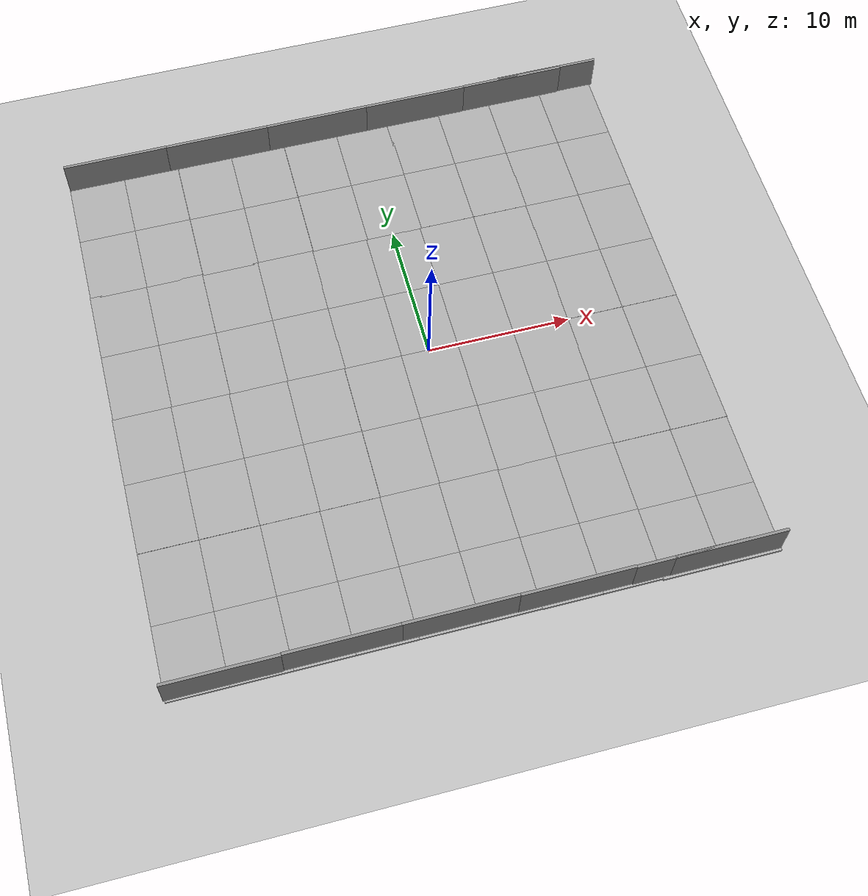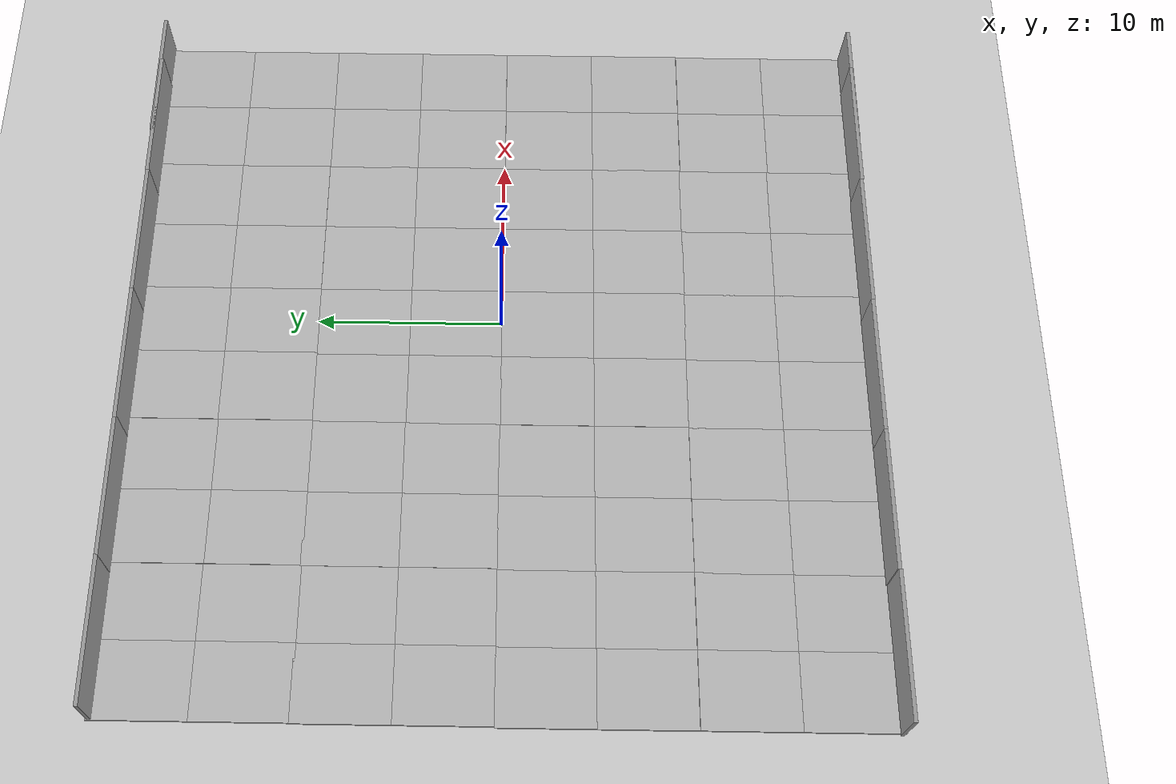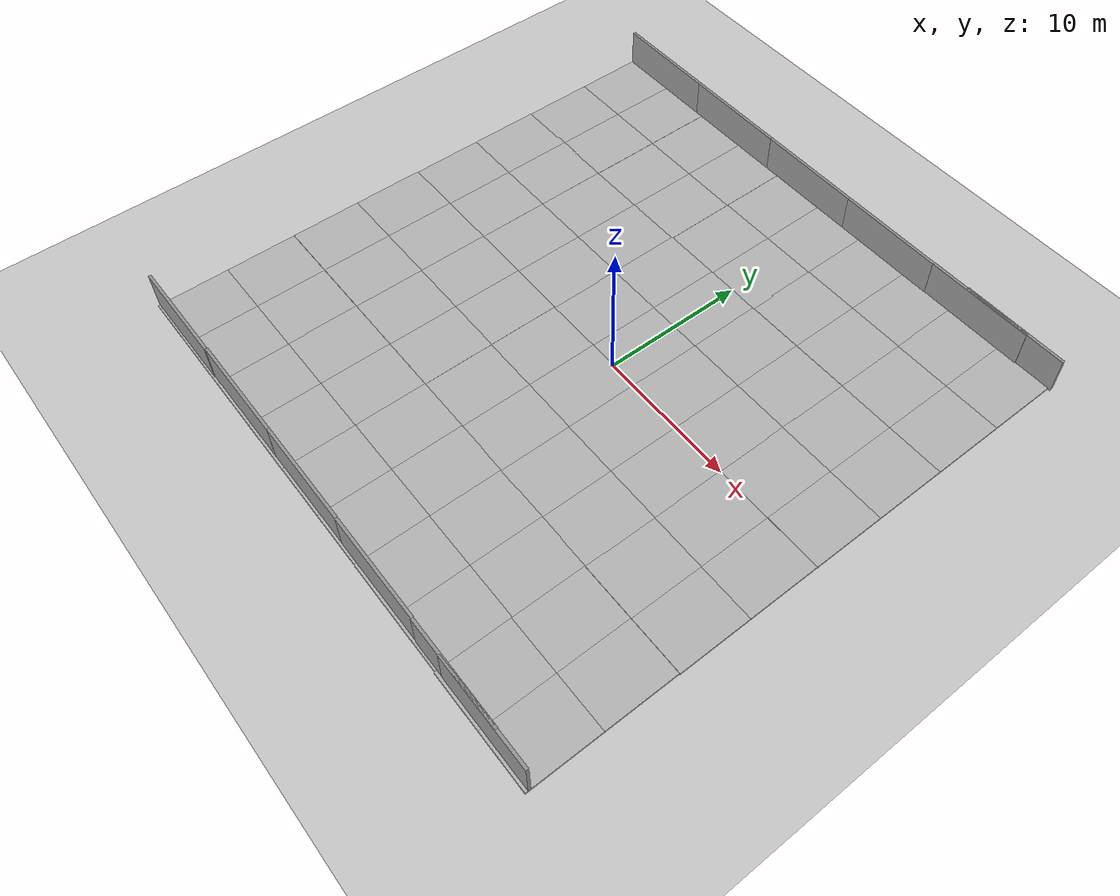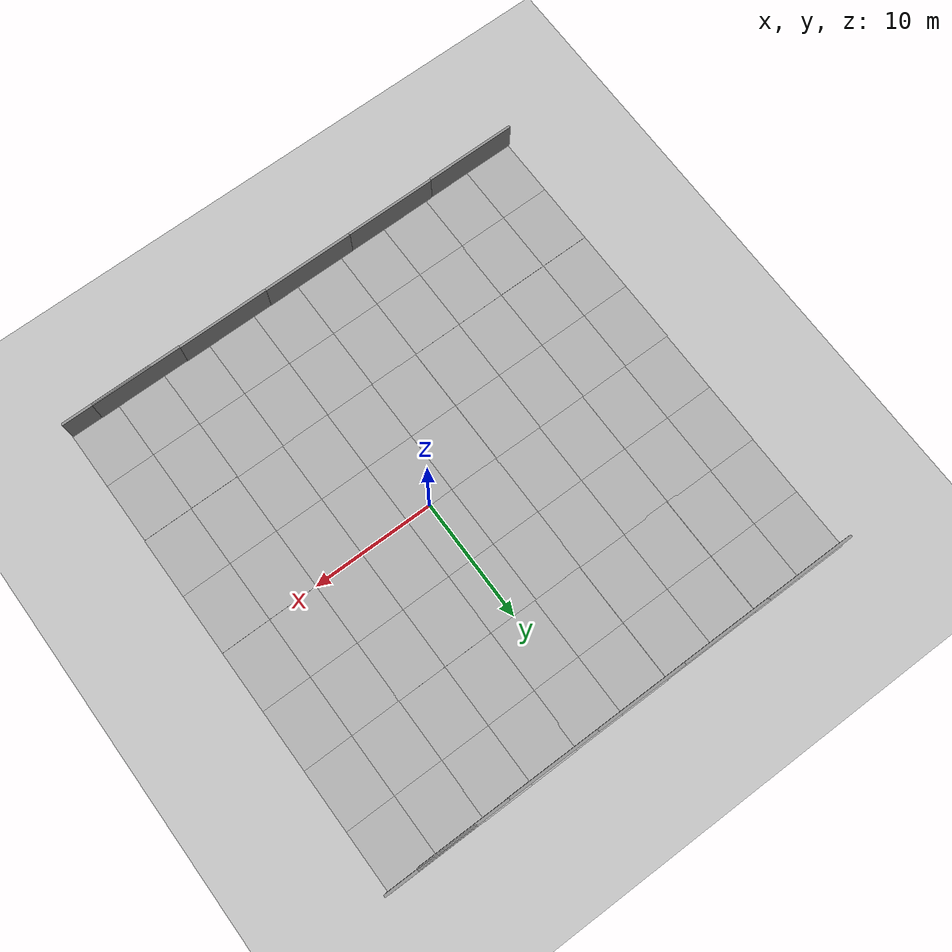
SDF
<sdf version="1.6">
 <world name="default">
  <light name="sun" type="directional">
   <pose>0 0 10 0 -0 0</pose>
   <diffuse>0.8 0.8 0.8 1</diffuse>
   <specular>0.2 0.2 0.2 1</specular>
   <attenuation>
    <range>1000</range>
    <constant>0.9</constant>
    <linear>0.01</linear>
    <quadratic>0.001</quadratic>
   </attenuation>
   <direction>-0.5 0.1 -0.9</direction>
  </light>
  <gravity>0 0 -9.8</gravity>
  <magnetic_field>6e-06 2.3e-05 -4.2e-05</magnetic_field>
  <atmosphere type="adiabatic"/>
  <physics name="default_physics" default="0" type="ode">
   <max_step_size>0.001</max_step_size>
   <real_time_factor>1</real_time_factor>
   <real_time_update_rate>1000</real_time_update_rate>
  </physics>
  <scene><ambient>0.4 0.4 0.4 1</ambient><background>0.7 0.7 0.7 1</background><shadows>1</shadows></scene>
  <spherical_coordinates>
   <surface_model>EARTH_WGS84</surface_model>
   <latitude_deg>0</latitude_deg>
   <longitude_deg>0</longitude_deg>
   <elevation>0</elevation>
   <heading_deg>0</heading_deg>
  </spherical_coordinates>
  <model name="ground_plane">
   <static>1</static>
   <link name="link">
    <collision name="collision">
     <geometry><plane><normal>0 0 1</normal><size>100 100</size></plane></geometry>
     <surface><friction><ode><mu>100</mu><mu2>50</mu2></ode></friction></surface>
    </collision>
    <visual name="visual">
     <cast_shadows>0</cast_shadows>
     <geometry><plane><normal>0 0 1</normal><size>100 100</size></plane></geometry>
     <material>
      <script><uri>file://media/materials/scripts/gazebo.material</uri><name>Gazebo/Grey</name></script>
     </material>
    </visual>
   </link>
   <pose>6.25069 6.10633 0 0 -0 0</pose>
  </model>
  <model name="mud_box">
   <static>1</static>
   <link name="link">
    <collision name="collision"><geometry><box><size>8 10 0.2</size></box></geometry></collision>
    <visual name="visual_1">
     <pose>-2 2.5 0 0 -0 0</pose>
     <cast_shadows>0</cast_shadows>
     <geometry><box><size>4 5 0.2</size></box></geometry>
     <material>
      <script>
       <uri>model://mud_box/materials/scripts</uri>
       <uri>model://mud_box/materials/textures</uri>
       <name>vrc/mud</name>
      </script>
     </material>
    </visual>
    <visual name="visual_2">
     <pose>2 2.5 0 0 -0 0</pose>
     <cast_shadows>0</cast_shadows>
     <geometry><box><size>4 5 0.2</size></box></geometry>
     <material>
      <script>
       <uri>model://mud_box/materials/scripts</uri>
       <uri>model://mud_box/materials/textures</uri>
       <name>vrc/mud</name>
      </script>
     </material>
    </visual>
    <visual name="visual_3">
     <pose>2 -2.5 0 0 -0 0</pose>
     <cast_shadows>0</cast_shadows>
     <geometry><box><size>4 5 0.2</size></box></geometry>
     <material>
      <script>
       <uri>model://mud_box/materials/scripts</uri>
       <uri>model://mud_box/materials/textures</uri>
       <name>vrc/mud</name>
      </script>
     </material>
    </visual>
    <visual name="visual_4">
     <pose>-2 -2.5 0 0 -0 0</pose>
     <cast_shadows>0</cast_shadows>
     <geometry><box><size>4 5 0.2</size></box></geometry>
     <material>
      <script>
       <uri>model://mud_box/materials/scripts</uri>
       <uri>model://mud_box/materials/textures</uri>
       <name>vrc/mud</name>
      </script>
     </material>
    </visual>
   </link>
   <pose>5.99496 -5.0064 0 0 -0 0</pose>
  </model>
  <model name="mud_box_0">
   <static>1</static>
   <link name="link">
    <collision name="collision"><geometry><box><size>8 10 0.2</size></box></geometry></collision>
    <visual name="visual_1">
     <pose>-2 2.5 0 0 -0 0</pose>
     <cast_shadows>0</cast_shadows>
     <geometry><box><size>4 5 0.2</size></box></geometry>
     <material>
      <script>
       <uri>model://mud_box/materials/scripts</uri>
       <uri>model://mud_box/materials/textures</uri>
       <name>vrc/mud</name>
      </script>
     </material>
    </visual>
    <visual name="visual_2">
     <pose>2 2.5 0 0 -0 0</pose>
     <cast_shadows>0</cast_shadows>
     <geometry><box><size>4 5 0.2</size></box></geometry>
     <material>
      <script>
       <uri>model://mud_box/materials/scripts</uri>
       <uri>model://mud_box/materials/textures</uri>
       <name>vrc/mud</name>
      </script>
     </material>
    </visual>
    <visual name="visual_3">
     <pose>2 -2.5 0 0 -0 0</pose>
     <cast_shadows>0</cast_shadows>
     <geometry><box><size>4 5 0.2</size></box></geometry>
     <material>
      <script>
       <uri>model://mud_box/materials/scripts</uri>
       <uri>model://mud_box/materials/textures</uri>
       <name>vrc/mud</name>
      </script>
     </material>
    </visual>
    <visual name="visual_4">
     <pose>-2 -2.5 0 0 -0 0</pose>
     <cast_shadows>0</cast_shadows>
     <geometry><box><size>4 5 0.2</size></box></geometry>
     <material>
      <script>
       <uri>model://mud_box/materials/scripts</uri>
       <uri>model://mud_box/materials/textures</uri>
       <name>vrc/mud</name>
      </script>
     </material>
    </visual>
   </link>
   <pose>-1.99179 -4.97894 0 0 -0 0</pose>
  </model>
  <model name="mud_box_1">
   <static>1</static>
   <link name="link">
    <collision name="collision"><geometry><box><size>8 10 0.2</size></box></geometry></collision>
    <visual name="visual_1">
     <pose>-2 2.5 0 0 -0 0</pose>
     <cast_shadows>0</cast_shadows>
     <geometry><box><size>4 5 0.2</size></box></geometry>
     <material>
      <script>
       <uri>model://mud_box/materials/scripts</uri>
       <uri>model://mud_box/materials/textures</uri>
       <name>vrc/mud</name>
      </script>
     </material>
    </visual>
    <visual name="visual_2">
     <pose>2 2.5 0 0 -0 0</pose>
     <cast_shadows>0</cast_shadows>
     <geometry><box><size>4 5 0.2</size></box></geometry>
     <material>
      <script>
       <uri>model://mud_box/materials/scripts</uri>
       <uri>model://mud_box/materials/textures</uri>
       <name>vrc/mud</name>
      </script>
     </material>
    </visual>
    <visual name="visual_3">
     <pose>2 -2.5 0 0 -0 0</pose>
     <cast_shadows>0</cast_shadows>
     <geometry><box><size>4 5 0.2</size></box></geometry>
     <material>
      <script>
       <uri>model://mud_box/materials/scripts</uri>
       <uri>model://mud_box/materials/textures</uri>
       <name>vrc/mud</name>
      </script>
     </material>
    </visual>
    <visual name="visual_4">
     <pose>-2 -2.5 0 0 -0 0</pose>
     <cast_shadows>0</cast_shadows>
     <geometry><box><size>4 5 0.2</size></box></geometry>
     <material>
      <script>
       <uri>model://mud_box/materials/scripts</uri>
       <uri>model://mud_box/materials/textures</uri>
       <name>vrc/mud</name>
      </script>
     </material>
    </visual>
   </link>
   <pose>-10.0007 -4.94628 0 0 -0 0</pose>
  </model>
  <model name="mud_box_2">
   <static>1</static>
   <link name="link">
    <collision name="collision"><geometry><box><size>8 10 0.2</size></box></geometry></collision>
    <visual name="visual_1">
     <pose>-2 2.5 0 0 -0 0</pose>
     <cast_shadows>0</cast_shadows>
     <geometry><box><size>4 5 0.2</size></box></geometry>
     <material>
      <script>
       <uri>model://mud_box/materials/scripts</uri>
       <uri>model://mud_box/materials/textures</uri>
       <name>vrc/mud</name>
      </script>
     </material>
    </visual>
    <visual name="visual_2">
     <pose>2 2.5 0 0 -0 0</pose>
     <cast_shadows>0</cast_shadows>
     <geometry><box><size>4 5 0.2</size></box></geometry>
     <material>
      <script>
       <uri>model://mud_box/materials/scripts</uri>
       <uri>model://mud_box/materials/textures</uri>
       <name>vrc/mud</name>
      </script>
     </material>
    </visual>
    <visual name="visual_3">
     <pose>2 -2.5 0 0 -0 0</pose>
     <cast_shadows>0</cast_shadows>
     <geometry><box><size>4 5 0.2</size></box></geometry>
     <material>
      <script>
       <uri>model://mud_box/materials/scripts</uri>
       <uri>model://mud_box/materials/textures</uri>
       <name>vrc/mud</name>
      </script>
     </material>
    </visual>
    <visual name="visual_4">
     <pose>-2 -2.5 0 0 -0 0</pose>
     <cast_shadows>0</cast_shadows>
     <geometry><box><size>4 5 0.2</size></box></geometry>
     <material>
      <script>
       <uri>model://mud_box/materials/scripts</uri>
       <uri>model://mud_box/materials/textures</uri>
       <name>vrc/mud</name>
      </script>
     </material>
    </visual>
   </link>
   <pose>6.00465 5.00082 0 0 -0 0</pose>
  </model>
  <model name="mud_box_3">
   <static>1</static>
   <link name="link">
    <collision name="collision"><geometry><box><size>8 10 0.2</size></box></geometry></collision>
    <visual name="visual_1">
     <pose>-2 2.5 0 0 -0 0</pose>
     <cast_shadows>0</cast_shadows>
     <geometry><box><size>4 5 0.2</size></box></geometry>
     <material>
      <script>
       <uri>model://mud_box/materials/scripts</uri>
       <uri>model://mud_box/materials/textures</uri>
       <name>vrc/mud</name>
      </script>
     </material>
    </visual>
    <visual name="visual_2">
     <pose>2 2.5 0 0 -0 0</pose>
     <cast_shadows>0</cast_shadows>
     <geometry><box><size>4 5 0.2</size></box></geometry>
     <material>
      <script>
       <uri>model://mud_box/materials/scripts</uri>
       <uri>model://mud_box/materials/textures</uri>
       <name>vrc/mud</name>
      </script>
     </material>
    </visual>
    <visual name="visual_3">
     <pose>2 -2.5 0 0 -0 0</pose>
     <cast_shadows>0</cast_shadows>
     <geometry><box><size>4 5 0.2</size></box></geometry>
     <material>
      <script>
       <uri>model://mud_box/materials/scripts</uri>
       <uri>model://mud_box/materials/textures</uri>
       <name>vrc/mud</name>
      </script>
     </material>
    </visual>
    <visual name="visual_4">
     <pose>-2 -2.5 0 0 -0 0</pose>
     <cast_shadows>0</cast_shadows>
     <geometry><box><size>4 5 0.2</size></box></geometry>
     <material>
      <script>
       <uri>model://mud_box/materials/scripts</uri>
       <uri>model://mud_box/materials/textures</uri>
       <name>vrc/mud</name>
      </script>
     </material>
    </visual>
   </link>
   <pose>-1.9753 5.00008 0 0 -0 0</pose>
  </model>
  <model name="mud_box_4">
   <static>1</static>
   <link name="link">
    <collision name="collision"><geometry><box><size>8 10 0.2</size></box></geometry></collision>
    <visual name="visual_1">
     <pose>-2 2.5 0 0 -0 0</pose>
     <cast_shadows>0</cast_shadows>
     <geometry><box><size>4 5 0.2</size></box></geometry>
     <material>
      <script>
       <uri>model://mud_box/materials/scripts</uri>
       <uri>model://mud_box/materials/textures</uri>
       <name>vrc/mud</name>
      </script>
     </material>
    </visual>
    <visual name="visual_2">
     <pose>2 2.5 0 0 -0 0</pose>
     <cast_shadows>0</cast_shadows>
     <geometry><box><size>4 5 0.2</size></box></geometry>
     <material>
      <script>
       <uri>model://mud_box/materials/scripts</uri>
       <uri>model://mud_box/materials/textures</uri>
       <name>vrc/mud</name>
      </script>
     </material>
    </visual>
    <visual name="visual_3">
     <pose>2 -2.5 0 0 -0 0</pose>
     <cast_shadows>0</cast_shadows>
     <geometry><box><size>4 5 0.2</size></box></geometry>
     <material>
      <script>
       <uri>model://mud_box/materials/scripts</uri>
       <uri>model://mud_box/materials/textures</uri>
       <name>vrc/mud</name>
      </script>
     </material>
    </visual>
    <visual name="visual_4">
     <pose>-2 -2.5 0 0 -0 0</pose>
     <cast_shadows>0</cast_shadows>
     <geometry><box><size>4 5 0.2</size></box></geometry>
     <material>
      <script>
       <uri>model://mud_box/materials/scripts</uri>
       <uri>model://mud_box/materials/textures</uri>
       <name>vrc/mud</name>
      </script>
     </material>
    </visual>
   </link>
   <pose>-9.93372 5.03845 0 0 -0 0</pose>
  </model>
  <model name="mud_box_5">
   <static>1</static>
   <link name="link">
    <collision name="collision"><geometry><box><size>8 10 0.2</size></box></geometry></collision>
    <visual name="visual_1">
     <pose>-2 2.5 0 0 -0 0</pose>
     <cast_shadows>0</cast_shadows>
     <geometry><box><size>4 5 0.2</size></box></geometry>
     <material>
      <script>
       <uri>model://mud_box/materials/scripts</uri>
       <uri>model://mud_box/materials/textures</uri>
       <name>vrc/mud</name>
      </script>
     </material>
    </visual>
    <visual name="visual_2">
     <pose>2 2.5 0 0 -0 0</pose>
     <cast_shadows>0</cast_shadows>
     <geometry><box><size>4 5 0.2</size></box></geometry>
     <material>
      <script>
       <uri>model://mud_box/materials/scripts</uri>
       <uri>model://mud_box/materials/textures</uri>
       <name>vrc/mud</name>
      </script>
     </material>
    </visual>
    <visual name="visual_3">
     <pose>2 -2.5 0 0 -0 0</pose>
     <cast_shadows>0</cast_shadows>
     <geometry><box><size>4 5 0.2</size></box></geometry>
     <material>
      <script>
       <uri>model://mud_box/materials/scripts</uri>
       <uri>model://mud_box/materials/textures</uri>
       <name>vrc/mud</name>
      </script>
     </material>
    </visual>
    <visual name="visual_4">
     <pose>-2 -2.5 0 0 -0 0</pose>
     <cast_shadows>0</cast_shadows>
     <geometry><box><size>4 5 0.2</size></box></geometry>
     <material>
      <script>
       <uri>model://mud_box/materials/scripts</uri>
       <uri>model://mud_box/materials/textures</uri>
       <name>vrc/mud</name>
      </script>
     </material>
    </visual>
   </link>
   <pose>13.9574 -5.02275 0 0 -0 0</pose>
  </model>
  <model name="mud_box_6">
   <static>1</static>
   <link name="link">
    <collision name="collision"><geometry><box><size>8 10 0.2</size></box></geometry></collision>
    <visual name="visual_1">
     <pose>-2 2.5 0 0 -0 0</pose>
     <cast_shadows>0</cast_shadows>
     <geometry><box><size>4 5 0.2</size></box></geometry>
     <material>
      <script>
       <uri>model://mud_box/materials/scripts</uri>
       <uri>model://mud_box/materials/textures</uri>
       <name>vrc/mud</name>
      </script>
     </material>
    </visual>
    <visual name="visual_2">
     <pose>2 2.5 0 0 -0 0</pose>
     <cast_shadows>0</cast_shadows>
     <geometry><box><size>4 5 0.2</size></box></geometry>
     <material>
      <script>
       <uri>model://mud_box/materials/scripts</uri>
       <uri>model://mud_box/materials/textures</uri>
       <name>vrc/mud</name>
      </script>
     </material>
    </visual>
    <visual name="visual_3">
     <pose>2 -2.5 0 0 -0 0</pose>
     <cast_shadows>0</cast_shadows>
     <geometry><box><size>4 5 0.2</size></box></geometry>
     <material>
      <script>
       <uri>model://mud_box/materials/scripts</uri>
       <uri>model://mud_box/materials/textures</uri>
       <name>vrc/mud</name>
      </script>
     </material>
    </visual>
    <visual name="visual_4">
     <pose>-2 -2.5 0 0 -0 0</pose>
     <cast_shadows>0</cast_shadows>
     <geometry><box><size>4 5 0.2</size></box></geometry>
     <material>
      <script>
       <uri>model://mud_box/materials/scripts</uri>
       <uri>model://mud_box/materials/textures</uri>
       <name>vrc/mud</name>
      </script>
     </material>
    </visual>
   </link>
   <pose>13.9646 4.98522 0 0 -0 0</pose>
  </model>
  <model name="mud_box_7">
   <static>1</static>
   <link name="link">
    <collision name="collision"><geometry><box><size>8 10 0.2</size></box></geometry></collision>
    <visual name="visual_1">
     <pose>-2 2.5 0 0 -0 0</pose>
     <cast_shadows>0</cast_shadows>
     <geometry><box><size>4 5 0.2</size></box></geometry>
     <material>
      <script>
       <uri>model://mud_box/materials/scripts</uri>
       <uri>model://mud_box/materials/textures</uri>
       <name>vrc/mud</name>
      </script>
     </material>
    </visual>
    <visual name="visual_2">
     <pose>2 2.5 0 0 -0 0</pose>
     <cast_shadows>0</cast_shadows>
     <geometry><box><size>4 5 0.2</size></box></geometry>
     <material>
      <script>
       <uri>model://mud_box/materials/scripts</uri>
       <uri>model://mud_box/materials/textures</uri>
       <name>vrc/mud</name>
      </script>
     </material>
    </visual>
    <visual name="visual_3">
     <pose>2 -2.5 0 0 -0 0</pose>
     <cast_shadows>0</cast_shadows>
     <geometry><box><size>4 5 0.2</size></box></geometry>
     <material>
      <script>
       <uri>model://mud_box/materials/scripts</uri>
       <uri>model://mud_box/materials/textures</uri>
       <name>vrc/mud</name>
      </script>
     </material>
    </visual>
    <visual name="visual_4">
     <pose>-2 -2.5 0 0 -0 0</pose>
     <cast_shadows>0</cast_shadows>
     <geometry><box><size>4 5 0.2</size></box></geometry>
     <material>
      <script>
       <uri>model://mud_box/materials/scripts</uri>
       <uri>model://mud_box/materials/textures</uri>
       <name>vrc/mud</name>
      </script>
     </material>
    </visual>
   </link>
   <pose>-17.985 -4.93951 0 0 -0 0</pose>
  </model>
  <model name="mud_box_8">
   <static>1</static>
   <link name="link">
    <collision name="collision"><geometry><box><size>8 10 0.2</size></box></geometry></collision>
    <visual name="visual_1">
     <pose>-2 2.5 0 0 -0 0</pose>
     <cast_shadows>0</cast_shadows>
     <geometry><box><size>4 5 0.2</size></box></geometry>
     <material>
      <script>
       <uri>model://mud_box/materials/scripts</uri>
       <uri>model://mud_box/materials/textures</uri>
       <name>vrc/mud</name>
      </script>
     </material>
    </visual>
    <visual name="visual_2">
     <pose>2 2.5 0 0 -0 0</pose>
     <cast_shadows>0</cast_shadows>
     <geometry><box><size>4 5 0.2</size></box></geometry>
     <material>
      <script>
       <uri>model://mud_box/materials/scripts</uri>
       <uri>model://mud_box/materials/textures</uri>
       <name>vrc/mud</name>
      </script>
     </material>
    </visual>
    <visual name="visual_3">
     <pose>2 -2.5 0 0 -0 0</pose>
     <cast_shadows>0</cast_shadows>
     <geometry><box><size>4 5 0.2</size></box></geometry>
     <material>
      <script>
       <uri>model://mud_box/materials/scripts</uri>
       <uri>model://mud_box/materials/textures</uri>
       <name>vrc/mud</name>
      </script>
     </material>
    </visual>
    <visual name="visual_4">
     <pose>-2 -2.5 0 0 -0 0</pose>
     <cast_shadows>0</cast_shadows>
     <geometry><box><size>4 5 0.2</size></box></geometry>
     <material>
      <script>
       <uri>model://mud_box/materials/scripts</uri>
       <uri>model://mud_box/materials/textures</uri>
       <name>vrc/mud</name>
      </script>
     </material>
    </visual>
   </link>
   <pose>-17.936 5.04682 0 0 -0 0</pose>
  </model>
  <model name="mud_box_9">
   <static>1</static>
   <link name="link">
    <collision name="collision"><geometry><box><size>8 10 0.2</size></box></geometry></collision>
    <visual name="visual_1">
     <pose>-2 2.5 0 0 -0 0</pose>
     <cast_shadows>0</cast_shadows>
     <geometry><box><size>4 5 0.2</size></box></geometry>
     <material>
      <script>
       <uri>model://mud_box/materials/scripts</uri>
       <uri>model://mud_box/materials/textures</uri>
       <name>vrc/mud</name>
      </script>
     </material>
    </visual>
    <visual name="visual_2">
     <pose>2 2.5 0 0 -0 0</pose>
     <cast_shadows>0</cast_shadows>
     <geometry><box><size>4 5 0.2</size></box></geometry>
     <material>
      <script>
       <uri>model://mud_box/materials/scripts</uri>
       <uri>model://mud_box/materials/textures</uri>
       <name>vrc/mud</name>
      </script>
     </material>
    </visual>
    <visual name="visual_3">
     <pose>2 -2.5 0 0 -0 0</pose>
     <cast_shadows>0</cast_shadows>
     <geometry><box><size>4 5 0.2</size></box></geometry>
     <material>
      <script>
       <uri>model://mud_box/materials/scripts</uri>
       <uri>model://mud_box/materials/textures</uri>
       <name>vrc/mud</name>
      </script>
     </material>
    </visual>
    <visual name="visual_4">
     <pose>-2 -2.5 0 0 -0 0</pose>
     <cast_shadows>0</cast_shadows>
     <geometry><box><size>4 5 0.2</size></box></geometry>
     <material>
      <script>
       <uri>model://mud_box/materials/scripts</uri>
       <uri>model://mud_box/materials/textures</uri>
       <name>vrc/mud</name>
      </script>
     </material>
    </visual>
   </link>
   <pose>13.9717 14.9793 0 0 -0 0</pose>
  </model>
  <model name="mud_box_10">
   <static>1</static>
   <link name="link">
    <collision name="collision"><geometry><box><size>8 10 0.2</size></box></geometry></collision>
    <visual name="visual_1">
     <pose>-2 2.5 0 0 -0 0</pose>
     <cast_shadows>0</cast_shadows>
     <geometry><box><size>4 5 0.2</size></box></geometry>
     <material>
      <script>
       <uri>model://mud_box/materials/scripts</uri>
       <uri>model://mud_box/materials/textures</uri>
       <name>vrc/mud</name>
      </script>
     </material>
    </visual>
    <visual name="visual_2">
     <pose>2 2.5 0 0 -0 0</pose>
     <cast_shadows>0</cast_shadows>
     <geometry><box><size>4 5 0.2</size></box></geometry>
     <material>
      <script>
       <uri>model://mud_box/materials/scripts</uri>
       <uri>model://mud_box/materials/textures</uri>
       <name>vrc/mud</name>
      </script>
     </material>
    </visual>
    <visual name="visual_3">
     <pose>2 -2.5 0 0 -0 0</pose>
     <cast_shadows>0</cast_shadows>
     <geometry><box><size>4 5 0.2</size></box></geometry>
     <material>
      <script>
       <uri>model://mud_box/materials/scripts</uri>
       <uri>model://mud_box/materials/textures</uri>
       <name>vrc/mud</name>
      </script>
     </material>
    </visual>
    <visual name="visual_4">
     <pose>-2 -2.5 0 0 -0 0</pose>
     <cast_shadows>0</cast_shadows>
     <geometry><box><size>4 5 0.2</size></box></geometry>
     <material>
      <script>
       <uri>model://mud_box/materials/scripts</uri>
       <uri>model://mud_box/materials/textures</uri>
       <name>vrc/mud</name>
      </script>
     </material>
    </visual>
   </link>
   <pose>6.01386 15.0046 0 0 -0 0</pose>
  </model>
  <model name="mud_box_11">
   <static>1</static>
   <link name="link">
    <collision name="collision"><geometry><box><size>8 10 0.2</size></box></geometry></collision>
    <visual name="visual_1">
     <pose>-2 2.5 0 0 -0 0</pose>
     <cast_shadows>0</cast_shadows>
     <geometry><box><size>4 5 0.2</size></box></geometry>
     <material>
      <script>
       <uri>model://mud_box/materials/scripts</uri>
       <uri>model://mud_box/materials/textures</uri>
       <name>vrc/mud</name>
      </script>
     </material>
    </visual>
    <visual name="visual_2">
     <pose>2 2.5 0 0 -0 0</pose>
     <cast_shadows>0</cast_shadows>
     <geometry><box><size>4 5 0.2</size></box></geometry>
     <material>
      <script>
       <uri>model://mud_box/materials/scripts</uri>
       <uri>model://mud_box/materials/textures</uri>
       <name>vrc/mud</name>
      </script>
     </material>
    </visual>
    <visual name="visual_3">
     <pose>2 -2.5 0 0 -0 0</pose>
     <cast_shadows>0</cast_shadows>
     <geometry><box><size>4 5 0.2</size></box></geometry>
     <material>
      <script>
       <uri>model://mud_box/materials/scripts</uri>
       <uri>model://mud_box/materials/textures</uri>
       <name>vrc/mud</name>
      </script>
     </material>
    </visual>
    <visual name="visual_4">
     <pose>-2 -2.5 0 0 -0 0</pose>
     <cast_shadows>0</cast_shadows>
     <geometry><box><size>4 5 0.2</size></box></geometry>
     <material>
      <script>
       <uri>model://mud_box/materials/scripts</uri>
       <uri>model://mud_box/materials/textures</uri>
       <name>vrc/mud</name>
      </script>
     </material>
    </visual>
   </link>
   <pose>-1.88171 14.9756 0 0 -0 0</pose>
  </model>
  <model name="mud_box_12">
   <static>1</static>
   <link name="link">
    <collision name="collision"><geometry><box><size>8 10 0.2</size></box></geometry></collision>
    <visual name="visual_1">
     <pose>-2 2.5 0 0 -0 0</pose>
     <cast_shadows>0</cast_shadows>
     <geometry><box><size>4 5 0.2</size></box></geometry>
     <material>
      <script>
       <uri>model://mud_box/materials/scripts</uri>
       <uri>model://mud_box/materials/textures</uri>
       <name>vrc/mud</name>
      </script>
     </material>
    </visual>
    <visual name="visual_2">
     <pose>2 2.5 0 0 -0 0</pose>
     <cast_shadows>0</cast_shadows>
     <geometry><box><size>4 5 0.2</size></box></geometry>
     <material>
      <script>
       <uri>model://mud_box/materials/scripts</uri>
       <uri>model://mud_box/materials/textures</uri>
       <name>vrc/mud</name>
      </script>
     </material>
    </visual>
    <visual name="visual_3">
     <pose>2 -2.5 0 0 -0 0</pose>
     <cast_shadows>0</cast_shadows>
     <geometry><box><size>4 5 0.2</size></box></geometry>
     <material>
      <script>
       <uri>model://mud_box/materials/scripts</uri>
       <uri>model://mud_box/materials/textures</uri>
       <name>vrc/mud</name>
      </script>
     </material>
    </visual>
    <visual name="visual_4">
     <pose>-2 -2.5 0 0 -0 0</pose>
     <cast_shadows>0</cast_shadows>
     <geometry><box><size>4 5 0.2</size></box></geometry>
     <material>
      <script>
       <uri>model://mud_box/materials/scripts</uri>
       <uri>model://mud_box/materials/textures</uri>
       <name>vrc/mud</name>
      </script>
     </material>
    </visual>
   </link>
   <pose>-9.89371 14.9379 0 0 -0 0</pose>
  </model>
  <model name="mud_box_13">
   <static>1</static>
   <link name="link">
    <collision name="collision"><geometry><box><size>8 10 0.2</size></box></geometry></collision>
    <visual name="visual_1">
     <pose>-2 2.5 0 0 -0 0</pose>
     <cast_shadows>0</cast_shadows>
     <geometry><box><size>4 5 0.2</size></box></geometry>
     <material>
      <script>
       <uri>model://mud_box/materials/scripts</uri>
       <uri>model://mud_box/materials/textures</uri>
       <name>vrc/mud</name>
      </script>
     </material>
    </visual>
    <visual name="visual_2">
     <pose>2 2.5 0 0 -0 0</pose>
     <cast_shadows>0</cast_shadows>
     <geometry><box><size>4 5 0.2</size></box></geometry>
     <material>
      <script>
       <uri>model://mud_box/materials/scripts</uri>
       <uri>model://mud_box/materials/textures</uri>
       <name>vrc/mud</name>
      </script>
     </material>
    </visual>
    <visual name="visual_3">
     <pose>2 -2.5 0 0 -0 0</pose>
     <cast_shadows>0</cast_shadows>
     <geometry><box><size>4 5 0.2</size></box></geometry>
     <material>
      <script>
       <uri>model://mud_box/materials/scripts</uri>
       <uri>model://mud_box/materials/textures</uri>
       <name>vrc/mud</name>
      </script>
     </material>
    </visual>
    <visual name="visual_4">
     <pose>-2 -2.5 0 0 -0 0</pose>
     <cast_shadows>0</cast_shadows>
     <geometry><box><size>4 5 0.2</size></box></geometry>
     <material>
      <script>
       <uri>model://mud_box/materials/scripts</uri>
       <uri>model://mud_box/materials/textures</uri>
       <name>vrc/mud</name>
      </script>
     </material>
    </visual>
   </link>
   <pose>-17.9098 14.9591 0 0 -0 0</pose>
  </model>
  <model name="mud_box_14">
   <static>1</static>
   <link name="link">
    <collision name="collision"><geometry><box><size>8 10 0.2</size></box></geometry></collision>
    <visual name="visual_1">
     <pose>-2 2.5 0 0 -0 0</pose>
     <cast_shadows>0</cast_shadows>
     <geometry><box><size>4 5 0.2</size></box></geometry>
     <material>
      <script>
       <uri>model://mud_box/materials/scripts</uri>
       <uri>model://mud_box/materials/textures</uri>
       <name>vrc/mud</name>
      </script>
     </material>
    </visual>
    <visual name="visual_2">
     <pose>2 2.5 0 0 -0 0</pose>
     <cast_shadows>0</cast_shadows>
     <geometry><box><size>4 5 0.2</size></box></geometry>
     <material>
      <script>
       <uri>model://mud_box/materials/scripts</uri>
       <uri>model://mud_box/materials/textures</uri>
       <name>vrc/mud</name>
      </script>
     </material>
    </visual>
    <visual name="visual_3">
     <pose>2 -2.5 0 0 -0 0</pose>
     <cast_shadows>0</cast_shadows>
     <geometry><box><size>4 5 0.2</size></box></geometry>
     <material>
      <script>
       <uri>model://mud_box/materials/scripts</uri>
       <uri>model://mud_box/materials/textures</uri>
       <name>vrc/mud</name>
      </script>
     </material>
    </visual>
    <visual name="visual_4">
     <pose>-2 -2.5 0 0 -0 0</pose>
     <cast_shadows>0</cast_shadows>
     <geometry><box><size>4 5 0.2</size></box></geometry>
     <material>
      <script>
       <uri>model://mud_box/materials/scripts</uri>
       <uri>model://mud_box/materials/textures</uri>
       <name>vrc/mud</name>
      </script>
     </material>
    </visual>
   </link>
   <pose>-17.9798 -14.9545 0 0 -0 0</pose>
  </model>
  <model name="mud_box_15">
   <static>1</static>
   <link name="link">
    <collision name="collision"><geometry><box><size>8 10 0.2</size></box></geometry></collision>
    <visual name="visual_1">
     <pose>-2 2.5 0 0 -0 0</pose>
     <cast_shadows>0</cast_shadows>
     <geometry><box><size>4 5 0.2</size></box></geometry>
     <material>
      <script>
       <uri>model://mud_box/materials/scripts</uri>
       <uri>model://mud_box/materials/textures</uri>
       <name>vrc/mud</name>
      </script>
     </material>
    </visual>
    <visual name="visual_2">
     <pose>2 2.5 0 0 -0 0</pose>
     <cast_shadows>0</cast_shadows>
     <geometry><box><size>4 5 0.2</size></box></geometry>
     <material>
      <script>
       <uri>model://mud_box/materials/scripts</uri>
       <uri>model://mud_box/materials/textures</uri>
       <name>vrc/mud</name>
      </script>
     </material>
    </visual>
    <visual name="visual_3">
     <pose>2 -2.5 0 0 -0 0</pose>
     <cast_shadows>0</cast_shadows>
     <geometry><box><size>4 5 0.2</size></box></geometry>
     <material>
      <script>
       <uri>model://mud_box/materials/scripts</uri>
       <uri>model://mud_box/materials/textures</uri>
       <name>vrc/mud</name>
      </script>
     </material>
    </visual>
    <visual name="visual_4">
     <pose>-2 -2.5 0 0 -0 0</pose>
     <cast_shadows>0</cast_shadows>
     <geometry><box><size>4 5 0.2</size></box></geometry>
     <material>
      <script>
       <uri>model://mud_box/materials/scripts</uri>
       <uri>model://mud_box/materials/textures</uri>
       <name>vrc/mud</name>
      </script>
     </material>
    </visual>
   </link>
   <pose>-10.0354 -14.9525 0 0 -0 0</pose>
  </model>
  <model name="mud_box_16">
   <static>1</static>
   <link name="link">
    <collision name="collision"><geometry><box><size>8 10 0.2</size></box></geometry></collision>
    <visual name="visual_1">
     <pose>-2 2.5 0 0 -0 0</pose>
     <cast_shadows>0</cast_shadows>
     <geometry><box><size>4 5 0.2</size></box></geometry>
     <material>
      <script>
       <uri>model://mud_box/materials/scripts</uri>
       <uri>model://mud_box/materials/textures</uri>
       <name>vrc/mud</name>
      </script>
     </material>
    </visual>
    <visual name="visual_2">
     <pose>2 2.5 0 0 -0 0</pose>
     <cast_shadows>0</cast_shadows>
     <geometry><box><size>4 5 0.2</size></box></geometry>
     <material>
      <script>
       <uri>model://mud_box/materials/scripts</uri>
       <uri>model://mud_box/materials/textures</uri>
       <name>vrc/mud</name>
      </script>
     </material>
    </visual>
    <visual name="visual_3">
     <pose>2 -2.5 0 0 -0 0</pose>
     <cast_shadows>0</cast_shadows>
     <geometry><box><size>4 5 0.2</size></box></geometry>
     <material>
      <script>
       <uri>model://mud_box/materials/scripts</uri>
       <uri>model://mud_box/materials/textures</uri>
       <name>vrc/mud</name>
      </script>
     </material>
    </visual>
    <visual name="visual_4">
     <pose>-2 -2.5 0 0 -0 0</pose>
     <cast_shadows>0</cast_shadows>
     <geometry><box><size>4 5 0.2</size></box></geometry>
     <material>
      <script>
       <uri>model://mud_box/materials/scripts</uri>
       <uri>model://mud_box/materials/textures</uri>
       <name>vrc/mud</name>
      </script>
     </material>
    </visual>
   </link>
   <pose>-2.04574 -14.9469 0 0 -0 0</pose>
  </model>
  <model name="mud_box_17">
   <static>1</static>
   <link name="link">
    <collision name="collision"><geometry><box><size>8 10 0.2</size></box></geometry></collision>
    <visual name="visual_1">
     <pose>-2 2.5 0 0 -0 0</pose>
     <cast_shadows>0</cast_shadows>
     <geometry><box><size>4 5 0.2</size></box></geometry>
     <material>
      <script>
       <uri>model://mud_box/materials/scripts</uri>
       <uri>model://mud_box/materials/textures</uri>
       <name>vrc/mud</name>
      </script>
     </material>
    </visual>
    <visual name="visual_2">
     <pose>2 2.5 0 0 -0 0</pose>
     <cast_shadows>0</cast_shadows>
     <geometry><box><size>4 5 0.2</size></box></geometry>
     <material>
      <script>
       <uri>model://mud_box/materials/scripts</uri>
       <uri>model://mud_box/materials/textures</uri>
       <name>vrc/mud</name>
      </script>
     </material>
    </visual>
    <visual name="visual_3">
     <pose>2 -2.5 0 0 -0 0</pose>
     <cast_shadows>0</cast_shadows>
     <geometry><box><size>4 5 0.2</size></box></geometry>
     <material>
      <script>
       <uri>model://mud_box/materials/scripts</uri>
       <uri>model://mud_box/materials/textures</uri>
       <name>vrc/mud</name>
      </script>
     </material>
    </visual>
    <visual name="visual_4">
     <pose>-2 -2.5 0 0 -0 0</pose>
     <cast_shadows>0</cast_shadows>
     <geometry><box><size>4 5 0.2</size></box></geometry>
     <material>
      <script>
       <uri>model://mud_box/materials/scripts</uri>
       <uri>model://mud_box/materials/textures</uri>
       <name>vrc/mud</name>
      </script>
     </material>
    </visual>
   </link>
   <pose>5.94254 -14.9676 0 0 -0 0</pose>
  </model>
  <model name="mud_box_18">
   <static>1</static>
   <link name="link">
    <collision name="collision"><geometry><box><size>8 10 0.2</size></box></geometry></collision>
    <visual name="visual_1">
     <pose>-2 2.5 0 0 -0 0</pose>
     <cast_shadows>0</cast_shadows>
     <geometry><box><size>4 5 0.2</size></box></geometry>
     <material>
      <script>
       <uri>model://mud_box/materials/scripts</uri>
       <uri>model://mud_box/materials/textures</uri>
       <name>vrc/mud</name>
      </script>
     </material>
    </visual>
    <visual name="visual_2">
     <pose>2 2.5 0 0 -0 0</pose>
     <cast_shadows>0</cast_shadows>
     <geometry><box><size>4 5 0.2</size></box></geometry>
     <material>
      <script>
       <uri>model://mud_box/materials/scripts</uri>
       <uri>model://mud_box/materials/textures</uri>
       <name>vrc/mud</name>
      </script>
     </material>
    </visual>
    <visual name="visual_3">
     <pose>2 -2.5 0 0 -0 0</pose>
     <cast_shadows>0</cast_shadows>
     <geometry><box><size>4 5 0.2</size></box></geometry>
     <material>
      <script>
       <uri>model://mud_box/materials/scripts</uri>
       <uri>model://mud_box/materials/textures</uri>
       <name>vrc/mud</name>
      </script>
     </material>
    </visual>
    <visual name="visual_4">
     <pose>-2 -2.5 0 0 -0 0</pose>
     <cast_shadows>0</cast_shadows>
     <geometry><box><size>4 5 0.2</size></box></geometry>
     <material>
      <script>
       <uri>model://mud_box/materials/scripts</uri>
       <uri>model://mud_box/materials/textures</uri>
       <name>vrc/mud</name>
      </script>
     </material>
    </visual>
   </link>
   <pose>13.9224 -15.0343 0 0 -0 0</pose>
  </model>
  <model name="grey_wall">
   <static>1</static>
   <link name="link">
    <pose>0 0 1.4 0 -0 0</pose>
    <collision name="collision"><geometry><box><size>7.5 0.2 2.8</size></box></geometry></collision>
    <visual name="visual">
     <cast_shadows>0</cast_shadows>
     <geometry><box><size>7.5 0.2 2.8</size></box></geometry>
     <material>
      <script>
       <uri>model://grey_wall/materials/scripts</uri>
       <uri>model://grey_wall/materials/textures</uri>
       <name>vrc/grey_wall</name>
      </script>
     </material>
    </visual>
   </link>
   <pose>-18.3126 -19.7259 0 0 -0 0</pose>
  </model>
  <model name="grey_wall_0">
   <static>1</static>
   <link name="link">
    <pose>0 0 1.4 0 -0 0</pose>
    <collision name="collision"><geometry><box><size>7.5 0.2 2.8</size></box></geometry></collision>
    <visual name="visual">
     <cast_shadows>0</cast_shadows>
     <geometry><box><size>7.5 0.2 2.8</size></box></geometry>
     <material>
      <script>
       <uri>model://grey_wall/materials/scripts</uri>
       <uri>model://grey_wall/materials/textures</uri>
       <name>vrc/grey_wall</name>
      </script>
     </material>
    </visual>
   </link>
   <pose>-10.8018 -19.6842 0 0 -0 0</pose>
  </model>
  <model name="grey_wall_1">
   <static>1</static>
   <link name="link">
    <pose>0 0 1.4 0 -0 0</pose>
    <collision name="collision"><geometry><box><size>7.5 0.2 2.8</size></box></geometry></collision>
    <visual name="visual">
     <cast_shadows>0</cast_shadows>
     <geometry><box><size>7.5 0.2 2.8</size></box></geometry>
     <material>
      <script>
       <uri>model://grey_wall/materials/scripts</uri>
       <uri>model://grey_wall/materials/textures</uri>
       <name>vrc/grey_wall</name>
      </script>
     </material>
    </visual>
   </link>
   <pose>-3.35273 -19.6779 0 0 -0 0</pose>
  </model>
  <model name="grey_wall_2">
   <static>1</static>
   <link name="link">
    <pose>0 0 1.4 0 -0 0</pose>
    <collision name="collision"><geometry><box><size>7.5 0.2 2.8</size></box></geometry></collision>
    <visual name="visual">
     <cast_shadows>0</cast_shadows>
     <geometry><box><size>7.5 0.2 2.8</size></box></geometry>
     <material>
      <script>
       <uri>model://grey_wall/materials/scripts</uri>
       <uri>model://grey_wall/materials/textures</uri>
       <name>vrc/grey_wall</name>
      </script>
     </material>
    </visual>
   </link>
   <pose>4.15878 -19.6955 0 0 -0 0</pose>
  </model>
  <model name="grey_wall_3">
   <static>1</static>
   <link name="link">
    <pose>0 0 1.4 0 -0 0</pose>
    <collision name="collision"><geometry><box><size>7.5 0.2 2.8</size></box></geometry></collision>
    <visual name="visual">
     <cast_shadows>0</cast_shadows>
     <geometry><box><size>7.5 0.2 2.8</size></box></geometry>
     <material>
      <script>
       <uri>model://grey_wall/materials/scripts</uri>
       <uri>model://grey_wall/materials/textures</uri>
       <name>vrc/grey_wall</name>
      </script>
     </material>
    </visual>
   </link>
   <pose>11.638 -19.7357 0 0 -0 0</pose>
  </model>
  <model name="grey_wall_4">
   <static>1</static>
   <link name="link">
    <pose>0 0 1.4 0 -0 0</pose>
    <collision name="collision"><geometry><box><size>7.5 0.2 2.8</size></box></geometry></collision>
    <visual name="visual">
     <cast_shadows>0</cast_shadows>
     <geometry><box><size>7.5 0.2 2.8</size></box></geometry>
     <material>
      <script>
       <uri>model://grey_wall/materials/scripts</uri>
       <uri>model://grey_wall/materials/textures</uri>
       <name>vrc/grey_wall</name>
      </script>
     </material>
    </visual>
   </link>
   <pose>14.1608 -19.7553 0 0 -0 0</pose>
  </model>
  <model name="grey_wall_5">
   <static>1</static>
   <link name="link">
    <pose>0 0 1.4 0 -0 0</pose>
    <collision name="collision"><geometry><box><size>7.5 0.2 2.8</size></box></geometry></collision>
    <visual name="visual">
     <cast_shadows>0</cast_shadows>
     <geometry><box><size>7.5 0.2 2.8</size></box></geometry>
     <material>
      <script>
       <uri>model://grey_wall/materials/scripts</uri>
       <uri>model://grey_wall/materials/textures</uri>
       <name>vrc/grey_wall</name>
      </script>
     </material>
    </visual>
   </link>
   <pose>-18.1428 19.7533 0 0 -0 0</pose>
  </model>
  <model name="grey_wall_6">
   <static>1</static>
   <link name="link">
    <pose>0 0 1.4 0 -0 0</pose>
    <collision name="collision"><geometry><box><size>7.5 0.2 2.8</size></box></geometry></collision>
    <visual name="visual">
     <cast_shadows>0</cast_shadows>
     <geometry><box><size>7.5 0.2 2.8</size></box></geometry>
     <material>
      <script>
       <uri>model://grey_wall/materials/scripts</uri>
       <uri>model://grey_wall/materials/textures</uri>
       <name>vrc/grey_wall</name>
      </script>
     </material>
    </visual>
   </link>
   <pose>-10.7019 19.7482 0 0 -0 0</pose>
  </model>
  <model name="grey_wall_7">
   <static>1</static>
   <link name="link">
    <pose>0 0 1.4 0 -0 0</pose>
    <collision name="collision"><geometry><box><size>7.5 0.2 2.8</size></box></geometry></collision>
    <visual name="visual">
     <cast_shadows>0</cast_shadows>
     <geometry><box><size>7.5 0.2 2.8</size></box></geometry>
     <material>
      <script>
       <uri>model://grey_wall/materials/scripts</uri>
       <uri>model://grey_wall/materials/textures</uri>
       <name>vrc/grey_wall</name>
      </script>
     </material>
    </visual>
   </link>
   <pose>-3.26649 19.7518 0 0 -0 0</pose>
  </model>
  <model name="grey_wall_8">
   <static>1</static>
   <link name="link">
    <pose>0 0 1.4 0 -0 0</pose>
    <collision name="collision"><geometry><box><size>7.5 0.2 2.8</size></box></geometry></collision>
    <visual name="visual">
     <cast_shadows>0</cast_shadows>
     <geometry><box><size>7.5 0.2 2.8</size></box></geometry>
     <material>
      <script>
       <uri>model://grey_wall/materials/scripts</uri>
       <uri>model://grey_wall/materials/textures</uri>
       <name>vrc/grey_wall</name>
      </script>
     </material>
    </visual>
   </link>
   <pose>4.17963 19.7524 0 0 -0 0</pose>
  </model>
  <model name="grey_wall_9">
   <static>1</static>
   <link name="link">
    <pose>0 0 1.4 0 -0 0</pose>
    <collision name="collision"><geometry><box><size>7.5 0.2 2.8</size></box></geometry></collision>
    <visual name="visual">
     <cast_shadows>0</cast_shadows>
     <geometry><box><size>7.5 0.2 2.8</size></box></geometry>
     <material>
      <script>
       <uri>model://grey_wall/materials/scripts</uri>
       <uri>model://grey_wall/materials/textures</uri>
       <name>vrc/grey_wall</name>
      </script>
     </material>
    </visual>
   </link>
   <pose>11.6813 19.7753 0 0 -0 0</pose>
  </model>
  <model name="grey_wall_10">
   <static>1</static>
   <link name="link">
    <pose>0 0 1.4 0 -0 0</pose>
    <collision name="collision"><geometry><box><size>7.5 0.2 2.8</size></box></geometry></collision>
    <visual name="visual">
     <cast_shadows>0</cast_shadows>
     <geometry><box><size>7.5 0.2 2.8</size></box></geometry>
     <material>
      <script>
       <uri>model://grey_wall/materials/scripts</uri>
       <uri>model://grey_wall/materials/textures</uri>
       <name>vrc/grey_wall</name>
      </script>
     </material>
    </visual>
   </link>
   <pose>14.3942 19.8353 0 0 -0 0</pose>
  </model>
 </world>
</sdf>
